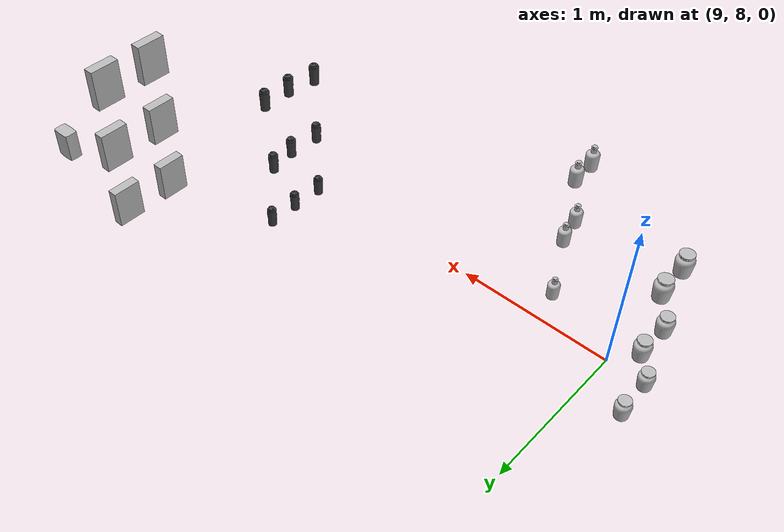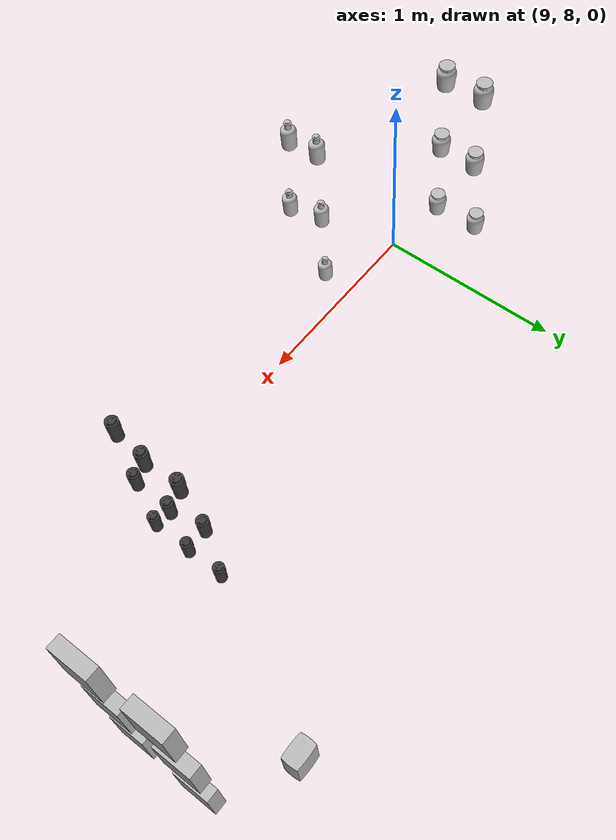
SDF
<sdf version="1.6">
 <world name="default">
  <model name="deodorant">
   <link name="link_0">
    <inertial>
     <mass>1</mass>
     <inertia>
      <ixx>0.166667</ixx>
      <ixy>0</ixy>
      <ixz>0</ixz>
      <iyy>0.166667</iyy>
      <iyz>0</iyz>
      <izz>0.166667</izz>
     </inertia>
    </inertial>
    <pose>-2e-06 3e-06 0 0 -0 0</pose>
    <visual name="visual">
     <geometry>
      <mesh><uri>model://deodorant/meshes/deodorant.dae</uri><scale>0.03 0.03 0.03</scale></mesh>
     </geometry>
    </visual>
    <collision name="collision">
     <geometry>
      <mesh><uri>model://deodorant/meshes/deodorant.dae</uri><scale>0.03 0.03 0.03</scale></mesh>
     </geometry>
     <surface>
      <friction>
       <ode><mu>1</mu><mu2>1</mu2><fdir1>0 0 0</fdir1><slip1>0</slip1><slip2>0</slip2></ode>
       <torsional>
        <coefficient>1</coefficient>
        <patch_radius>0</patch_radius>
        <surface_radius>0</surface_radius>
        <use_patch_radius>1</use_patch_radius>
        <ode><slip>0</slip></ode>
       </torsional>
      </friction>
      <bounce><restitution_coefficient>0</restitution_coefficient><threshold>1e+06</threshold></bounce>
      <contact>
       <collide_without_contact>0</collide_without_contact>
       <collide_without_contact_bitmask>1</collide_without_contact_bitmask>
       <collide_bitmask>1</collide_bitmask>
       <ode>
        <soft_cfm>0</soft_cfm>
        <soft_erp>0.2</soft_erp>
        <kp>1e+13</kp>
        <kd>1</kd>
        <max_vel>0.01</max_vel>
        <min_depth>0</min_depth>
       </ode>
       <bullet>
        <split_impulse>1</split_impulse>
        <split_impulse_penetration_threshold>-0.01</split_impulse_penetration_threshold>
        <soft_cfm>0</soft_cfm>
        <soft_erp>0.2</soft_erp>
        <kp>1e+13</kp>
        <kd>1</kd>
       </bullet>
      </contact>
     </surface>
    </collision>
   </link>
   <static>1</static>
   <pose>11.0774 8.17403 0.959351 0 -0 0</pose>
  </model>
  <model name="deodorant_clone">
   <link name="link_0">
    <inertial>
     <mass>1</mass>
     <inertia>
      <ixx>0.166667</ixx>
      <ixy>0</ixy>
      <ixz>0</ixz>
      <iyy>0.166667</iyy>
      <iyz>0</iyz>
      <izz>0.166667</izz>
     </inertia>
    </inertial>
    <pose>-2e-06 3e-06 0 0 -0 0</pose>
    <visual name="visual">
     <geometry>
      <mesh><uri>model://deodorant/meshes/deodorant.dae</uri><scale>0.03 0.03 0.03</scale></mesh>
     </geometry>
    </visual>
    <collision name="collision">
     <geometry>
      <mesh><uri>model://deodorant/meshes/deodorant.dae</uri><scale>0.03 0.03 0.03</scale></mesh>
     </geometry>
     <surface>
      <friction>
       <ode><mu>1</mu><mu2>1</mu2><fdir1>0 0 0</fdir1><slip1>0</slip1><slip2>0</slip2></ode>
       <torsional>
        <coefficient>1</coefficient>
        <patch_radius>0</patch_radius>
        <surface_radius>0</surface_radius>
        <use_patch_radius>1</use_patch_radius>
        <ode><slip>0</slip></ode>
       </torsional>
      </friction>
      <bounce><restitution_coefficient>0</restitution_coefficient><threshold>1e+06</threshold></bounce>
      <contact>
       <collide_without_contact>0</collide_without_contact>
       <collide_without_contact_bitmask>1</collide_without_contact_bitmask>
       <collide_bitmask>1</collide_bitmask>
       <ode>
        <soft_cfm>0</soft_cfm>
        <soft_erp>0.2</soft_erp>
        <kp>1e+13</kp>
        <kd>1</kd>
        <max_vel>0.01</max_vel>
        <min_depth>0</min_depth>
       </ode>
       <bullet>
        <split_impulse>1</split_impulse>
        <split_impulse_penetration_threshold>-0.01</split_impulse_penetration_threshold>
        <soft_cfm>0</soft_cfm>
        <soft_erp>0.2</soft_erp>
        <kp>1e+13</kp>
        <kd>1</kd>
       </bullet>
      </contact>
     </surface>
    </collision>
   </link>
   <static>1</static>
   <pose>11.0838 8.37858 0.104595 0 -0 0</pose>
  </model>
  <model name="deodorant_clone_0">
   <link name="link_0">
    <inertial>
     <mass>1</mass>
     <inertia>
      <ixx>0.166667</ixx>
      <ixy>0</ixy>
      <ixz>0</ixz>
      <iyy>0.166667</iyy>
      <iyz>0</iyz>
      <izz>0.166667</izz>
     </inertia>
    </inertial>
    <pose>-2e-06 3e-06 0 0 -0 0</pose>
    <visual name="visual">
     <geometry>
      <mesh><uri>model://deodorant/meshes/deodorant.dae</uri><scale>0.03 0.03 0.03</scale></mesh>
     </geometry>
    </visual>
    <collision name="collision">
     <geometry>
      <mesh><uri>model://deodorant/meshes/deodorant.dae</uri><scale>0.03 0.03 0.03</scale></mesh>
     </geometry>
     <surface>
      <friction>
       <ode><mu>1</mu><mu2>1</mu2><fdir1>0 0 0</fdir1><slip1>0</slip1><slip2>0</slip2></ode>
       <torsional>
        <coefficient>1</coefficient>
        <patch_radius>0</patch_radius>
        <surface_radius>0</surface_radius>
        <use_patch_radius>1</use_patch_radius>
        <ode><slip>0</slip></ode>
       </torsional>
      </friction>
      <bounce><restitution_coefficient>0</restitution_coefficient><threshold>1e+06</threshold></bounce>
      <contact>
       <collide_without_contact>0</collide_without_contact>
       <collide_without_contact_bitmask>1</collide_without_contact_bitmask>
       <collide_bitmask>1</collide_bitmask>
       <ode>
        <soft_cfm>0</soft_cfm>
        <soft_erp>0.2</soft_erp>
        <kp>1e+13</kp>
        <kd>1</kd>
        <max_vel>0.01</max_vel>
        <min_depth>0</min_depth>
       </ode>
       <bullet>
        <split_impulse>1</split_impulse>
        <split_impulse_penetration_threshold>-0.01</split_impulse_penetration_threshold>
        <soft_cfm>0</soft_cfm>
        <soft_erp>0.2</soft_erp>
        <kp>1e+13</kp>
        <kd>1</kd>
       </bullet>
      </contact>
     </surface>
    </collision>
   </link>
   <static>1</static>
   <pose>11.0877 8.57294 0.104595 0 -0 0</pose>
  </model>
  <model name="deodorant_clone_1">
   <link name="link_0">
    <inertial>
     <mass>1</mass>
     <inertia>
      <ixx>0.166667</ixx>
      <ixy>0</ixy>
      <ixz>0</ixz>
      <iyy>0.166667</iyy>
      <iyz>0</iyz>
      <izz>0.166667</izz>
     </inertia>
    </inertial>
    <pose>-2e-06 3e-06 0 0 -0 0</pose>
    <visual name="visual">
     <geometry>
      <mesh><uri>model://deodorant/meshes/deodorant.dae</uri><scale>0.03 0.03 0.03</scale></mesh>
     </geometry>
    </visual>
    <collision name="collision">
     <geometry>
      <mesh><uri>model://deodorant/meshes/deodorant.dae</uri><scale>0.03 0.03 0.03</scale></mesh>
     </geometry>
     <surface>
      <friction>
       <ode><mu>1</mu><mu2>1</mu2><fdir1>0 0 0</fdir1><slip1>0</slip1><slip2>0</slip2></ode>
       <torsional>
        <coefficient>1</coefficient>
        <patch_radius>0</patch_radius>
        <surface_radius>0</surface_radius>
        <use_patch_radius>1</use_patch_radius>
        <ode><slip>0</slip></ode>
       </torsional>
      </friction>
      <bounce><restitution_coefficient>0</restitution_coefficient><threshold>1e+06</threshold></bounce>
      <contact>
       <collide_without_contact>0</collide_without_contact>
       <collide_without_contact_bitmask>1</collide_without_contact_bitmask>
       <collide_bitmask>1</collide_bitmask>
       <ode>
        <soft_cfm>0</soft_cfm>
        <soft_erp>0.2</soft_erp>
        <kp>1e+13</kp>
        <kd>1</kd>
        <max_vel>0.01</max_vel>
        <min_depth>0</min_depth>
       </ode>
       <bullet>
        <split_impulse>1</split_impulse>
        <split_impulse_penetration_threshold>-0.01</split_impulse_penetration_threshold>
        <soft_cfm>0</soft_cfm>
        <soft_erp>0.2</soft_erp>
        <kp>1e+13</kp>
        <kd>1</kd>
       </bullet>
      </contact>
     </surface>
    </collision>
   </link>
   <static>1</static>
   <pose>11.0774 8.17359 0.104595 0 -0 0</pose>
  </model>
  <model name="deodorant_clone_2">
   <link name="link_0">
    <inertial>
     <mass>1</mass>
     <inertia>
      <ixx>0.166667</ixx>
      <ixy>0</ixy>
      <ixz>0</ixz>
      <iyy>0.166667</iyy>
      <iyz>0</iyz>
      <izz>0.166667</izz>
     </inertia>
    </inertial>
    <pose>-2e-06 3e-06 0 0 -0 0</pose>
    <visual name="visual">
     <geometry>
      <mesh><uri>model://deodorant/meshes/deodorant.dae</uri><scale>0.03 0.03 0.03</scale></mesh>
     </geometry>
    </visual>
    <collision name="collision">
     <geometry>
      <mesh><uri>model://deodorant/meshes/deodorant.dae</uri><scale>0.03 0.03 0.03</scale></mesh>
     </geometry>
     <surface>
      <friction>
       <ode><mu>1</mu><mu2>1</mu2><fdir1>0 0 0</fdir1><slip1>0</slip1><slip2>0</slip2></ode>
       <torsional>
        <coefficient>1</coefficient>
        <patch_radius>0</patch_radius>
        <surface_radius>0</surface_radius>
        <use_patch_radius>1</use_patch_radius>
        <ode><slip>0</slip></ode>
       </torsional>
      </friction>
      <bounce><restitution_coefficient>0</restitution_coefficient><threshold>1e+06</threshold></bounce>
      <contact>
       <collide_without_contact>0</collide_without_contact>
       <collide_without_contact_bitmask>1</collide_without_contact_bitmask>
       <collide_bitmask>1</collide_bitmask>
       <ode>
        <soft_cfm>0</soft_cfm>
        <soft_erp>0.2</soft_erp>
        <kp>1e+13</kp>
        <kd>1</kd>
        <max_vel>0.01</max_vel>
        <min_depth>0</min_depth>
       </ode>
       <bullet>
        <split_impulse>1</split_impulse>
        <split_impulse_penetration_threshold>-0.01</split_impulse_penetration_threshold>
        <soft_cfm>0</soft_cfm>
        <soft_erp>0.2</soft_erp>
        <kp>1e+13</kp>
        <kd>1</kd>
       </bullet>
      </contact>
     </surface>
    </collision>
   </link>
   <static>1</static>
   <pose>11.094 8.37201 0.528479 0 -0 0</pose>
  </model>
  <model name="deodorant_clone_3">
   <link name="link_0">
    <inertial>
     <mass>1</mass>
     <inertia>
      <ixx>0.166667</ixx>
      <ixy>0</ixy>
      <ixz>0</ixz>
      <iyy>0.166667</iyy>
      <iyz>0</iyz>
      <izz>0.166667</izz>
     </inertia>
    </inertial>
    <pose>-2e-06 3e-06 0 0 -0 0</pose>
    <visual name="visual">
     <geometry>
      <mesh><uri>model://deodorant/meshes/deodorant.dae</uri><scale>0.03 0.03 0.03</scale></mesh>
     </geometry>
    </visual>
    <collision name="collision">
     <geometry>
      <mesh><uri>model://deodorant/meshes/deodorant.dae</uri><scale>0.03 0.03 0.03</scale></mesh>
     </geometry>
     <surface>
      <friction>
       <ode><mu>1</mu><mu2>1</mu2><fdir1>0 0 0</fdir1><slip1>0</slip1><slip2>0</slip2></ode>
       <torsional>
        <coefficient>1</coefficient>
        <patch_radius>0</patch_radius>
        <surface_radius>0</surface_radius>
        <use_patch_radius>1</use_patch_radius>
        <ode><slip>0</slip></ode>
       </torsional>
      </friction>
      <bounce><restitution_coefficient>0</restitution_coefficient><threshold>1e+06</threshold></bounce>
      <contact>
       <collide_without_contact>0</collide_without_contact>
       <collide_without_contact_bitmask>1</collide_without_contact_bitmask>
       <collide_bitmask>1</collide_bitmask>
       <ode>
        <soft_cfm>0</soft_cfm>
        <soft_erp>0.2</soft_erp>
        <kp>1e+13</kp>
        <kd>1</kd>
        <max_vel>0.01</max_vel>
        <min_depth>0</min_depth>
       </ode>
       <bullet>
        <split_impulse>1</split_impulse>
        <split_impulse_penetration_threshold>-0.01</split_impulse_penetration_threshold>
        <soft_cfm>0</soft_cfm>
        <soft_erp>0.2</soft_erp>
        <kp>1e+13</kp>
        <kd>1</kd>
       </bullet>
      </contact>
     </surface>
    </collision>
   </link>
   <static>1</static>
   <pose>11.07 8.5429 0.528479 0 -0 0</pose>
  </model>
  <model name="deodorant_clone_4">
   <link name="link_0">
    <inertial>
     <mass>1</mass>
     <inertia>
      <ixx>0.166667</ixx>
      <ixy>0</ixy>
      <ixz>0</ixz>
      <iyy>0.166667</iyy>
      <iyz>0</iyz>
      <izz>0.166667</izz>
     </inertia>
    </inertial>
    <pose>-2e-06 3e-06 0 0 -0 0</pose>
    <visual name="visual">
     <geometry>
      <mesh><uri>model://deodorant/meshes/deodorant.dae</uri><scale>0.03 0.03 0.03</scale></mesh>
     </geometry>
    </visual>
    <collision name="collision">
     <geometry>
      <mesh><uri>model://deodorant/meshes/deodorant.dae</uri><scale>0.03 0.03 0.03</scale></mesh>
     </geometry>
     <surface>
      <friction>
       <ode><mu>1</mu><mu2>1</mu2><fdir1>0 0 0</fdir1><slip1>0</slip1><slip2>0</slip2></ode>
       <torsional>
        <coefficient>1</coefficient>
        <patch_radius>0</patch_radius>
        <surface_radius>0</surface_radius>
        <use_patch_radius>1</use_patch_radius>
        <ode><slip>0</slip></ode>
       </torsional>
      </friction>
      <bounce><restitution_coefficient>0</restitution_coefficient><threshold>1e+06</threshold></bounce>
      <contact>
       <collide_without_contact>0</collide_without_contact>
       <collide_without_contact_bitmask>1</collide_without_contact_bitmask>
       <collide_bitmask>1</collide_bitmask>
       <ode>
        <soft_cfm>0</soft_cfm>
        <soft_erp>0.2</soft_erp>
        <kp>1e+13</kp>
        <kd>1</kd>
        <max_vel>0.01</max_vel>
        <min_depth>0</min_depth>
       </ode>
       <bullet>
        <split_impulse>1</split_impulse>
        <split_impulse_penetration_threshold>-0.01</split_impulse_penetration_threshold>
        <soft_cfm>0</soft_cfm>
        <soft_erp>0.2</soft_erp>
        <kp>1e+13</kp>
        <kd>1</kd>
       </bullet>
      </contact>
     </surface>
    </collision>
   </link>
   <static>1</static>
   <pose>11.0806 8.17041 0.528479 0 -0 0</pose>
  </model>
  <model name="deodorant_clone_5">
   <link name="link_0">
    <inertial>
     <mass>1</mass>
     <inertia>
      <ixx>0.166667</ixx>
      <ixy>0</ixy>
      <ixz>0</ixz>
      <iyy>0.166667</iyy>
      <iyz>0</iyz>
      <izz>0.166667</izz>
     </inertia>
    </inertial>
    <pose>-2e-06 3e-06 0 0 -0 0</pose>
    <visual name="visual">
     <geometry>
      <mesh><uri>model://deodorant/meshes/deodorant.dae</uri><scale>0.03 0.03 0.03</scale></mesh>
     </geometry>
    </visual>
    <collision name="collision">
     <geometry>
      <mesh><uri>model://deodorant/meshes/deodorant.dae</uri><scale>0.03 0.03 0.03</scale></mesh>
     </geometry>
     <surface>
      <friction>
       <ode><mu>1</mu><mu2>1</mu2><fdir1>0 0 0</fdir1><slip1>0</slip1><slip2>0</slip2></ode>
       <torsional>
        <coefficient>1</coefficient>
        <patch_radius>0</patch_radius>
        <surface_radius>0</surface_radius>
        <use_patch_radius>1</use_patch_radius>
        <ode><slip>0</slip></ode>
       </torsional>
      </friction>
      <bounce><restitution_coefficient>0</restitution_coefficient><threshold>1e+06</threshold></bounce>
      <contact>
       <collide_without_contact>0</collide_without_contact>
       <collide_without_contact_bitmask>1</collide_without_contact_bitmask>
       <collide_bitmask>1</collide_bitmask>
       <ode>
        <soft_cfm>0</soft_cfm>
        <soft_erp>0.2</soft_erp>
        <kp>1e+13</kp>
        <kd>1</kd>
        <max_vel>0.01</max_vel>
        <min_depth>0</min_depth>
       </ode>
       <bullet>
        <split_impulse>1</split_impulse>
        <split_impulse_penetration_threshold>-0.01</split_impulse_penetration_threshold>
        <soft_cfm>0</soft_cfm>
        <soft_erp>0.2</soft_erp>
        <kp>1e+13</kp>
        <kd>1</kd>
       </bullet>
      </contact>
     </surface>
    </collision>
   </link>
   <static>1</static>
   <pose>11.108 8.3523 0.959351 0 -0 0</pose>
  </model>
  <model name="deodorant_clone_6">
   <link name="link_0">
    <inertial>
     <mass>1</mass>
     <inertia>
      <ixx>0.166667</ixx>
      <ixy>0</ixy>
      <ixz>0</ixz>
      <iyy>0.166667</iyy>
      <iyz>0</iyz>
      <izz>0.166667</izz>
     </inertia>
    </inertial>
    <pose>-2e-06 3e-06 0 0 -0 0</pose>
    <visual name="visual">
     <geometry>
      <mesh><uri>model://deodorant/meshes/deodorant.dae</uri><scale>0.03 0.03 0.03</scale></mesh>
     </geometry>
    </visual>
    <collision name="collision">
     <geometry>
      <mesh><uri>model://deodorant/meshes/deodorant.dae</uri><scale>0.03 0.03 0.03</scale></mesh>
     </geometry>
     <surface>
      <friction>
       <ode><mu>1</mu><mu2>1</mu2><fdir1>0 0 0</fdir1><slip1>0</slip1><slip2>0</slip2></ode>
       <torsional>
        <coefficient>1</coefficient>
        <patch_radius>0</patch_radius>
        <surface_radius>0</surface_radius>
        <use_patch_radius>1</use_patch_radius>
        <ode><slip>0</slip></ode>
       </torsional>
      </friction>
      <bounce><restitution_coefficient>0</restitution_coefficient><threshold>1e+06</threshold></bounce>
      <contact>
       <collide_without_contact>0</collide_without_contact>
       <collide_without_contact_bitmask>1</collide_without_contact_bitmask>
       <collide_bitmask>1</collide_bitmask>
       <ode>
        <soft_cfm>0</soft_cfm>
        <soft_erp>0.2</soft_erp>
        <kp>1e+13</kp>
        <kd>1</kd>
        <max_vel>0.01</max_vel>
        <min_depth>0</min_depth>
       </ode>
       <bullet>
        <split_impulse>1</split_impulse>
        <split_impulse_penetration_threshold>-0.01</split_impulse_penetration_threshold>
        <soft_cfm>0</soft_cfm>
        <soft_erp>0.2</soft_erp>
        <kp>1e+13</kp>
        <kd>1</kd>
       </bullet>
      </contact>
     </surface>
    </collision>
   </link>
   <static>1</static>
   <pose>11.111 8.5358 0.959351 0 -0 0</pose>
  </model>
  <model name="mustard">
   <link name="link_3">
    <inertial>
     <mass>1</mass>
     <inertia>
      <ixx>0.166667</ixx>
      <ixy>0</ixy>
      <ixz>0</ixz>
      <iyy>0.166667</iyy>
      <iyz>0</iyz>
      <izz>0.166667</izz>
     </inertia>
    </inertial>
    <pose>-1e-06 -1e-06 0 0 -0 0</pose>
    <visual name="visual">
     <geometry><mesh><uri>model://mustard/meshes/mustard.dae</uri><scale>1 1 1</scale></mesh></geometry>
    </visual>
    <collision name="collision">
     <geometry><mesh><uri>model://mustard/meshes/mustard.dae</uri><scale>1 1 1</scale></mesh></geometry>
     <surface>
      <friction>
       <ode><mu>1</mu><mu2>1</mu2><fdir1>0 0 0</fdir1><slip1>0</slip1><slip2>0</slip2></ode>
       <torsional>
        <coefficient>1</coefficient>
        <patch_radius>0</patch_radius>
        <surface_radius>0</surface_radius>
        <use_patch_radius>1</use_patch_radius>
        <ode><slip>0</slip></ode>
       </torsional>
      </friction>
      <bounce><restitution_coefficient>0</restitution_coefficient><threshold>1e+06</threshold></bounce>
      <contact>
       <collide_without_contact>0</collide_without_contact>
       <collide_without_contact_bitmask>1</collide_without_contact_bitmask>
       <collide_bitmask>1</collide_bitmask>
       <ode>
        <soft_cfm>0</soft_cfm>
        <soft_erp>0.2</soft_erp>
        <kp>1e+13</kp>
        <kd>1</kd>
        <max_vel>0.01</max_vel>
        <min_depth>0</min_depth>
       </ode>
       <bullet>
        <split_impulse>1</split_impulse>
        <split_impulse_penetration_threshold>-0.01</split_impulse_penetration_threshold>
        <soft_cfm>0</soft_cfm>
        <soft_erp>0.2</soft_erp>
        <kp>1e+13</kp>
        <kd>1</kd>
       </bullet>
      </contact>
     </surface>
    </collision>
   </link>
   <static>1</static>
   <pose>8.72586 8.09646 0.983474 0 0 -1.56881</pose>
  </model>
  <model name="mustard_clone">
   <link name="link_3">
    <inertial>
     <mass>1</mass>
     <inertia>
      <ixx>0.166667</ixx>
      <ixy>0</ixy>
      <ixz>0</ixz>
      <iyy>0.166667</iyy>
      <iyz>0</iyz>
      <izz>0.166667</izz>
     </inertia>
    </inertial>
    <pose>-1e-06 -1e-06 0 0 -0 0</pose>
    <visual name="visual">
     <geometry><mesh><uri>model://mustard/meshes/mustard.dae</uri><scale>1 1 1</scale></mesh></geometry>
    </visual>
    <collision name="collision">
     <geometry><mesh><uri>model://mustard/meshes/mustard.dae</uri><scale>1 1 1</scale></mesh></geometry>
     <surface>
      <friction>
       <ode><mu>1</mu><mu2>1</mu2><fdir1>0 0 0</fdir1><slip1>0</slip1><slip2>0</slip2></ode>
       <torsional>
        <coefficient>1</coefficient>
        <patch_radius>0</patch_radius>
        <surface_radius>0</surface_radius>
        <use_patch_radius>1</use_patch_radius>
        <ode><slip>0</slip></ode>
       </torsional>
      </friction>
      <bounce><restitution_coefficient>0</restitution_coefficient><threshold>1e+06</threshold></bounce>
      <contact>
       <collide_without_contact>0</collide_without_contact>
       <collide_without_contact_bitmask>1</collide_without_contact_bitmask>
       <collide_bitmask>1</collide_bitmask>
       <ode>
        <soft_cfm>0</soft_cfm>
        <soft_erp>0.2</soft_erp>
        <kp>1e+13</kp>
        <kd>1</kd>
        <max_vel>0.01</max_vel>
        <min_depth>0</min_depth>
       </ode>
       <bullet>
        <split_impulse>1</split_impulse>
        <split_impulse_penetration_threshold>-0.01</split_impulse_penetration_threshold>
        <soft_cfm>0</soft_cfm>
        <soft_erp>0.2</soft_erp>
        <kp>1e+13</kp>
        <kd>1</kd>
       </bullet>
      </contact>
     </surface>
    </collision>
   </link>
   <static>1</static>
   <pose>8.71562 8.34337 0.100075 0 0 -1.56881</pose>
  </model>
  <model name="mustard_clone_0">
   <link name="link_3">
    <inertial>
     <mass>1</mass>
     <inertia>
      <ixx>0.166667</ixx>
      <ixy>0</ixy>
      <ixz>0</ixz>
      <iyy>0.166667</iyy>
      <iyz>0</iyz>
      <izz>0.166667</izz>
     </inertia>
    </inertial>
    <pose>-1e-06 -1e-06 0 0 -0 0</pose>
    <visual name="visual">
     <geometry><mesh><uri>model://mustard/meshes/mustard.dae</uri><scale>1 1 1</scale></mesh></geometry>
    </visual>
    <collision name="collision">
     <geometry><mesh><uri>model://mustard/meshes/mustard.dae</uri><scale>1 1 1</scale></mesh></geometry>
     <surface>
      <friction>
       <ode><mu>1</mu><mu2>1</mu2><fdir1>0 0 0</fdir1><slip1>0</slip1><slip2>0</slip2></ode>
       <torsional>
        <coefficient>1</coefficient>
        <patch_radius>0</patch_radius>
        <surface_radius>0</surface_radius>
        <use_patch_radius>1</use_patch_radius>
        <ode><slip>0</slip></ode>
       </torsional>
      </friction>
      <bounce><restitution_coefficient>0</restitution_coefficient><threshold>1e+06</threshold></bounce>
      <contact>
       <collide_without_contact>0</collide_without_contact>
       <collide_without_contact_bitmask>1</collide_without_contact_bitmask>
       <collide_bitmask>1</collide_bitmask>
       <ode>
        <soft_cfm>0</soft_cfm>
        <soft_erp>0.2</soft_erp>
        <kp>1e+13</kp>
        <kd>1</kd>
        <max_vel>0.01</max_vel>
        <min_depth>0</min_depth>
       </ode>
       <bullet>
        <split_impulse>1</split_impulse>
        <split_impulse_penetration_threshold>-0.01</split_impulse_penetration_threshold>
        <soft_cfm>0</soft_cfm>
        <soft_erp>0.2</soft_erp>
        <kp>1e+13</kp>
        <kd>1</kd>
       </bullet>
      </contact>
     </surface>
    </collision>
   </link>
   <static>1</static>
   <pose>8.72386 8.09896 0.100075 0 0 -1.56881</pose>
  </model>
  <model name="mustard_clone_2">
   <link name="link_3">
    <inertial>
     <mass>1</mass>
     <inertia>
      <ixx>0.166667</ixx>
      <ixy>0</ixy>
      <ixz>0</ixz>
      <iyy>0.166667</iyy>
      <iyz>0</iyz>
      <izz>0.166667</izz>
     </inertia>
    </inertial>
    <pose>-1e-06 -1e-06 0 0 -0 0</pose>
    <visual name="visual">
     <geometry><mesh><uri>model://mustard/meshes/mustard.dae</uri><scale>1 1 1</scale></mesh></geometry>
    </visual>
    <collision name="collision">
     <geometry><mesh><uri>model://mustard/meshes/mustard.dae</uri><scale>1 1 1</scale></mesh></geometry>
     <surface>
      <friction>
       <ode><mu>1</mu><mu2>1</mu2><fdir1>0 0 0</fdir1><slip1>0</slip1><slip2>0</slip2></ode>
       <torsional>
        <coefficient>1</coefficient>
        <patch_radius>0</patch_radius>
        <surface_radius>0</surface_radius>
        <use_patch_radius>1</use_patch_radius>
        <ode><slip>0</slip></ode>
       </torsional>
      </friction>
      <bounce><restitution_coefficient>0</restitution_coefficient><threshold>1e+06</threshold></bounce>
      <contact>
       <collide_without_contact>0</collide_without_contact>
       <collide_without_contact_bitmask>1</collide_without_contact_bitmask>
       <collide_bitmask>1</collide_bitmask>
       <ode>
        <soft_cfm>0</soft_cfm>
        <soft_erp>0.2</soft_erp>
        <kp>1e+13</kp>
        <kd>1</kd>
        <max_vel>0.01</max_vel>
        <min_depth>0</min_depth>
       </ode>
       <bullet>
        <split_impulse>1</split_impulse>
        <split_impulse_penetration_threshold>-0.01</split_impulse_penetration_threshold>
        <soft_cfm>0</soft_cfm>
        <soft_erp>0.2</soft_erp>
        <kp>1e+13</kp>
        <kd>1</kd>
       </bullet>
      </contact>
     </surface>
    </collision>
   </link>
   <static>1</static>
   <pose>8.72541 8.30292 0.541519 0 0 -1.56881</pose>
  </model>
  <model name="mustard_clone_3">
   <link name="link_3">
    <inertial>
     <mass>1</mass>
     <inertia>
      <ixx>0.166667</ixx>
      <ixy>0</ixy>
      <ixz>0</ixz>
      <iyy>0.166667</iyy>
      <iyz>0</iyz>
      <izz>0.166667</izz>
     </inertia>
    </inertial>
    <pose>-1e-06 -1e-06 0 0 -0 0</pose>
    <visual name="visual">
     <geometry><mesh><uri>model://mustard/meshes/mustard.dae</uri><scale>1 1 1</scale></mesh></geometry>
    </visual>
    <collision name="collision">
     <geometry><mesh><uri>model://mustard/meshes/mustard.dae</uri><scale>1 1 1</scale></mesh></geometry>
     <surface>
      <friction>
       <ode><mu>1</mu><mu2>1</mu2><fdir1>0 0 0</fdir1><slip1>0</slip1><slip2>0</slip2></ode>
       <torsional>
        <coefficient>1</coefficient>
        <patch_radius>0</patch_radius>
        <surface_radius>0</surface_radius>
        <use_patch_radius>1</use_patch_radius>
        <ode><slip>0</slip></ode>
       </torsional>
      </friction>
      <bounce><restitution_coefficient>0</restitution_coefficient><threshold>1e+06</threshold></bounce>
      <contact>
       <collide_without_contact>0</collide_without_contact>
       <collide_without_contact_bitmask>1</collide_without_contact_bitmask>
       <collide_bitmask>1</collide_bitmask>
       <ode>
        <soft_cfm>0</soft_cfm>
        <soft_erp>0.2</soft_erp>
        <kp>1e+13</kp>
        <kd>1</kd>
        <max_vel>0.01</max_vel>
        <min_depth>0</min_depth>
       </ode>
       <bullet>
        <split_impulse>1</split_impulse>
        <split_impulse_penetration_threshold>-0.01</split_impulse_penetration_threshold>
        <soft_cfm>0</soft_cfm>
        <soft_erp>0.2</soft_erp>
        <kp>1e+13</kp>
        <kd>1</kd>
       </bullet>
      </contact>
     </surface>
    </collision>
   </link>
   <static>1</static>
   <pose>8.72188 8.09316 0.541519 0 0 -1.56881</pose>
  </model>
  <model name="mustard_clone_4">
   <link name="link_3">
    <inertial>
     <mass>1</mass>
     <inertia>
      <ixx>0.166667</ixx>
      <ixy>0</ixy>
      <ixz>0</ixz>
      <iyy>0.166667</iyy>
      <iyz>0</iyz>
      <izz>0.166667</izz>
     </inertia>
    </inertial>
    <pose>-1e-06 -1e-06 0 0 -0 0</pose>
    <visual name="visual">
     <geometry><mesh><uri>model://mustard/meshes/mustard.dae</uri><scale>1 1 1</scale></mesh></geometry>
    </visual>
    <collision name="collision">
     <geometry><mesh><uri>model://mustard/meshes/mustard.dae</uri><scale>1 1 1</scale></mesh></geometry>
     <surface>
      <friction>
       <ode><mu>1</mu><mu2>1</mu2><fdir1>0 0 0</fdir1><slip1>0</slip1><slip2>0</slip2></ode>
       <torsional>
        <coefficient>1</coefficient>
        <patch_radius>0</patch_radius>
        <surface_radius>0</surface_radius>
        <use_patch_radius>1</use_patch_radius>
        <ode><slip>0</slip></ode>
       </torsional>
      </friction>
      <bounce><restitution_coefficient>0</restitution_coefficient><threshold>1e+06</threshold></bounce>
      <contact>
       <collide_without_contact>0</collide_without_contact>
       <collide_without_contact_bitmask>1</collide_without_contact_bitmask>
       <collide_bitmask>1</collide_bitmask>
       <ode>
        <soft_cfm>0</soft_cfm>
        <soft_erp>0.2</soft_erp>
        <kp>1e+13</kp>
        <kd>1</kd>
        <max_vel>0.01</max_vel>
        <min_depth>0</min_depth>
       </ode>
       <bullet>
        <split_impulse>1</split_impulse>
        <split_impulse_penetration_threshold>-0.01</split_impulse_penetration_threshold>
        <soft_cfm>0</soft_cfm>
        <soft_erp>0.2</soft_erp>
        <kp>1e+13</kp>
        <kd>1</kd>
       </bullet>
      </contact>
     </surface>
    </collision>
   </link>
   <static>1</static>
   <pose>8.71837 8.30407 0.983474 0 0 -1.56881</pose>
  </model>
  <model name="detergent">
   <link name="link_0">
    <inertial>
     <mass>1</mass>
     <inertia>
      <ixx>0.166667</ixx>
      <ixy>0</ixy>
      <ixz>0</ixz>
      <iyy>0.166667</iyy>
      <iyz>0</iyz>
      <izz>0.166667</izz>
     </inertia>
    </inertial>
    <visual name="visual">
     <geometry><mesh><uri>model://detergent/meshes/detergent.dae</uri><scale>1 1 1</scale></mesh></geometry>
    </visual>
    <collision name="collision">
     <geometry><mesh><uri>model://detergent/meshes/detergent.dae</uri><scale>1 1 1</scale></mesh></geometry>
     <surface>
      <friction>
       <ode><mu>1</mu><mu2>1</mu2><fdir1>0 0 0</fdir1><slip1>0</slip1><slip2>0</slip2></ode>
       <torsional>
        <coefficient>1</coefficient>
        <patch_radius>0</patch_radius>
        <surface_radius>0</surface_radius>
        <use_patch_radius>1</use_patch_radius>
        <ode><slip>0</slip></ode>
       </torsional>
      </friction>
      <bounce><restitution_coefficient>0</restitution_coefficient><threshold>1e+06</threshold></bounce>
      <contact>
       <collide_without_contact>0</collide_without_contact>
       <collide_without_contact_bitmask>1</collide_without_contact_bitmask>
       <collide_bitmask>1</collide_bitmask>
       <ode>
        <soft_cfm>0</soft_cfm>
        <soft_erp>0.2</soft_erp>
        <kp>1e+13</kp>
        <kd>1</kd>
        <max_vel>0.01</max_vel>
        <min_depth>0</min_depth>
       </ode>
       <bullet>
        <split_impulse>1</split_impulse>
        <split_impulse_penetration_threshold>-0.01</split_impulse_penetration_threshold>
        <soft_cfm>0</soft_cfm>
        <soft_erp>0.2</soft_erp>
        <kp>1e+13</kp>
        <kd>1</kd>
       </bullet>
      </contact>
     </surface>
    </collision>
   </link>
   <static>1</static>
   <pose>11.855 9.02569 0.542381 0 -0 1.56354</pose>
  </model>
  <model name="detergent_clone">
   <link name="link_0">
    <inertial>
     <mass>1</mass>
     <inertia>
      <ixx>0.166667</ixx>
      <ixy>0</ixy>
      <ixz>0</ixz>
      <iyy>0.166667</iyy>
      <iyz>0</iyz>
      <izz>0.166667</izz>
     </inertia>
    </inertial>
    <visual name="visual">
     <geometry><mesh><uri>model://detergent/meshes/detergent.dae</uri><scale>1 1 1</scale></mesh></geometry>
    </visual>
    <collision name="collision">
     <geometry><mesh><uri>model://detergent/meshes/detergent.dae</uri><scale>1 1 1</scale></mesh></geometry>
     <surface>
      <friction>
       <ode><mu>1</mu><mu2>1</mu2><fdir1>0 0 0</fdir1><slip1>0</slip1><slip2>0</slip2></ode>
       <torsional>
        <coefficient>1</coefficient>
        <patch_radius>0</patch_radius>
        <surface_radius>0</surface_radius>
        <use_patch_radius>1</use_patch_radius>
        <ode><slip>0</slip></ode>
       </torsional>
      </friction>
      <bounce><restitution_coefficient>0</restitution_coefficient><threshold>1e+06</threshold></bounce>
      <contact>
       <collide_without_contact>0</collide_without_contact>
       <collide_without_contact_bitmask>1</collide_without_contact_bitmask>
       <collide_bitmask>1</collide_bitmask>
       <ode>
        <soft_cfm>0</soft_cfm>
        <soft_erp>0.2</soft_erp>
        <kp>1e+13</kp>
        <kd>1</kd>
        <max_vel>0.01</max_vel>
        <min_depth>0</min_depth>
       </ode>
       <bullet>
        <split_impulse>1</split_impulse>
        <split_impulse_penetration_threshold>-0.01</split_impulse_penetration_threshold>
        <soft_cfm>0</soft_cfm>
        <soft_erp>0.2</soft_erp>
        <kp>1e+13</kp>
        <kd>1</kd>
       </bullet>
      </contact>
     </surface>
    </collision>
   </link>
   <static>1</static>
   <pose>11.8448 8.67821 0.095655 0 -0 1.56354</pose>
  </model>
  <model name="detergent_clone_0">
   <link name="link_0">
    <inertial>
     <mass>1</mass>
     <inertia>
      <ixx>0.166667</ixx>
      <ixy>0</ixy>
      <ixz>0</ixz>
      <iyy>0.166667</iyy>
      <iyz>0</iyz>
      <izz>0.166667</izz>
     </inertia>
    </inertial>
    <visual name="visual">
     <geometry><mesh><uri>model://detergent/meshes/detergent.dae</uri><scale>1 1 1</scale></mesh></geometry>
    </visual>
    <collision name="collision">
     <geometry><mesh><uri>model://detergent/meshes/detergent.dae</uri><scale>1 1 1</scale></mesh></geometry>
     <surface>
      <friction>
       <ode><mu>1</mu><mu2>1</mu2><fdir1>0 0 0</fdir1><slip1>0</slip1><slip2>0</slip2></ode>
       <torsional>
        <coefficient>1</coefficient>
        <patch_radius>0</patch_radius>
        <surface_radius>0</surface_radius>
        <use_patch_radius>1</use_patch_radius>
        <ode><slip>0</slip></ode>
       </torsional>
      </friction>
      <bounce><restitution_coefficient>0</restitution_coefficient><threshold>1e+06</threshold></bounce>
      <contact>
       <collide_without_contact>0</collide_without_contact>
       <collide_without_contact_bitmask>1</collide_without_contact_bitmask>
       <collide_bitmask>1</collide_bitmask>
       <ode>
        <soft_cfm>0</soft_cfm>
        <soft_erp>0.2</soft_erp>
        <kp>1e+13</kp>
        <kd>1</kd>
        <max_vel>0.01</max_vel>
        <min_depth>0</min_depth>
       </ode>
       <bullet>
        <split_impulse>1</split_impulse>
        <split_impulse_penetration_threshold>-0.01</split_impulse_penetration_threshold>
        <soft_cfm>0</soft_cfm>
        <soft_erp>0.2</soft_erp>
        <kp>1e+13</kp>
        <kd>1</kd>
       </bullet>
      </contact>
     </surface>
    </collision>
   </link>
   <static>1</static>
   <pose>11.8548 9.02355 0.095655 0 -0 1.56354</pose>
  </model>
  <model name="detergent_clone_1">
   <link name="link_0">
    <inertial>
     <mass>1</mass>
     <inertia>
      <ixx>0.166667</ixx>
      <ixy>0</ixy>
      <ixz>0</ixz>
      <iyy>0.166667</iyy>
      <iyz>0</iyz>
      <izz>0.166667</izz>
     </inertia>
    </inertial>
    <visual name="visual">
     <geometry><mesh><uri>model://detergent/meshes/detergent.dae</uri><scale>1 1 1</scale></mesh></geometry>
    </visual>
    <collision name="collision">
     <geometry><mesh><uri>model://detergent/meshes/detergent.dae</uri><scale>1 1 1</scale></mesh></geometry>
     <surface>
      <friction>
       <ode><mu>1</mu><mu2>1</mu2><fdir1>0 0 0</fdir1><slip1>0</slip1><slip2>0</slip2></ode>
       <torsional>
        <coefficient>1</coefficient>
        <patch_radius>0</patch_radius>
        <surface_radius>0</surface_radius>
        <use_patch_radius>1</use_patch_radius>
        <ode><slip>0</slip></ode>
       </torsional>
      </friction>
      <bounce><restitution_coefficient>0</restitution_coefficient><threshold>1e+06</threshold></bounce>
      <contact>
       <collide_without_contact>0</collide_without_contact>
       <collide_without_contact_bitmask>1</collide_without_contact_bitmask>
       <collide_bitmask>1</collide_bitmask>
       <ode>
        <soft_cfm>0</soft_cfm>
        <soft_erp>0.2</soft_erp>
        <kp>1e+13</kp>
        <kd>1</kd>
        <max_vel>0.01</max_vel>
        <min_depth>0</min_depth>
       </ode>
       <bullet>
        <split_impulse>1</split_impulse>
        <split_impulse_penetration_threshold>-0.01</split_impulse_penetration_threshold>
        <soft_cfm>0</soft_cfm>
        <soft_erp>0.2</soft_erp>
        <kp>1e+13</kp>
        <kd>1</kd>
       </bullet>
      </contact>
     </surface>
    </collision>
   </link>
   <static>1</static>
   <pose>11.8478 8.6776 0.542381 0 -0 1.56354</pose>
  </model>
  <model name="detergent_clone_2">
   <link name="link_0">
    <inertial>
     <mass>1</mass>
     <inertia>
      <ixx>0.166667</ixx>
      <ixy>0</ixy>
      <ixz>0</ixz>
      <iyy>0.166667</iyy>
      <iyz>0</iyz>
      <izz>0.166667</izz>
     </inertia>
    </inertial>
    <visual name="visual">
     <geometry><mesh><uri>model://detergent/meshes/detergent.dae</uri><scale>1 1 1</scale></mesh></geometry>
    </visual>
    <collision name="collision">
     <geometry><mesh><uri>model://detergent/meshes/detergent.dae</uri><scale>1 1 1</scale></mesh></geometry>
     <surface>
      <friction>
       <ode><mu>1</mu><mu2>1</mu2><fdir1>0 0 0</fdir1><slip1>0</slip1><slip2>0</slip2></ode>
       <torsional>
        <coefficient>1</coefficient>
        <patch_radius>0</patch_radius>
        <surface_radius>0</surface_radius>
        <use_patch_radius>1</use_patch_radius>
        <ode><slip>0</slip></ode>
       </torsional>
      </friction>
      <bounce><restitution_coefficient>0</restitution_coefficient><threshold>1e+06</threshold></bounce>
      <contact>
       <collide_without_contact>0</collide_without_contact>
       <collide_without_contact_bitmask>1</collide_without_contact_bitmask>
       <collide_bitmask>1</collide_bitmask>
       <ode>
        <soft_cfm>0</soft_cfm>
        <soft_erp>0.2</soft_erp>
        <kp>1e+13</kp>
        <kd>1</kd>
        <max_vel>0.01</max_vel>
        <min_depth>0</min_depth>
       </ode>
       <bullet>
        <split_impulse>1</split_impulse>
        <split_impulse_penetration_threshold>-0.01</split_impulse_penetration_threshold>
        <soft_cfm>0</soft_cfm>
        <soft_erp>0.2</soft_erp>
        <kp>1e+13</kp>
        <kd>1</kd>
       </bullet>
      </contact>
     </surface>
    </collision>
   </link>
   <static>1</static>
   <pose>11.8524 8.6723 0.977899 0 -0 1.56354</pose>
  </model>
  <model name="detergent_clone_2_clone">
   <link name="link_0">
    <inertial>
     <mass>1</mass>
     <inertia>
      <ixx>0.166667</ixx>
      <ixy>0</ixy>
      <ixz>0</ixz>
      <iyy>0.166667</iyy>
      <iyz>0</iyz>
      <izz>0.166667</izz>
     </inertia>
    </inertial>
    <visual name="visual">
     <geometry><mesh><uri>model://detergent/meshes/detergent.dae</uri><scale>1 1 1</scale></mesh></geometry>
    </visual>
    <collision name="collision">
     <geometry><mesh><uri>model://detergent/meshes/detergent.dae</uri><scale>1 1 1</scale></mesh></geometry>
     <surface>
      <friction>
       <ode><mu>1</mu><mu2>1</mu2><fdir1>0 0 0</fdir1><slip1>0</slip1><slip2>0</slip2></ode>
       <torsional>
        <coefficient>1</coefficient>
        <patch_radius>0</patch_radius>
        <surface_radius>0</surface_radius>
        <use_patch_radius>1</use_patch_radius>
        <ode><slip>0</slip></ode>
       </torsional>
      </friction>
      <bounce><restitution_coefficient>0</restitution_coefficient><threshold>1e+06</threshold></bounce>
      <contact>
       <collide_without_contact>0</collide_without_contact>
       <collide_without_contact_bitmask>1</collide_without_contact_bitmask>
       <collide_bitmask>1</collide_bitmask>
       <ode>
        <soft_cfm>0</soft_cfm>
        <soft_erp>0.2</soft_erp>
        <kp>1e+13</kp>
        <kd>1</kd>
        <max_vel>0.01</max_vel>
        <min_depth>0</min_depth>
       </ode>
       <bullet>
        <split_impulse>1</split_impulse>
        <split_impulse_penetration_threshold>-0.01</split_impulse_penetration_threshold>
        <soft_cfm>0</soft_cfm>
        <soft_erp>0.2</soft_erp>
        <kp>1e+13</kp>
        <kd>1</kd>
       </bullet>
      </contact>
     </surface>
    </collision>
   </link>
   <static>1</static>
   <pose>11.8517 8.99914 0.977899 0 -0 1.56354</pose>
  </model>
  <model name="black_pepper">
   <link name="link_0">
    <inertial>
     <mass>1</mass>
     <inertia>
      <ixx>0.166667</ixx>
      <ixy>0</ixy>
      <ixz>0</ixz>
      <iyy>0.166667</iyy>
      <iyz>0</iyz>
      <izz>0.166667</izz>
     </inertia>
    </inertial>
    <visual name="visual">
     <geometry><mesh><uri>model://black_pepper/meshes/black_pepper.dae</uri><scale>1 1 1</scale></mesh></geometry>
    </visual>
    <collision name="collision">
     <geometry><mesh><uri>model://black_pepper/meshes/black_pepper.dae</uri><scale>1 1 1</scale></mesh></geometry>
     <surface>
      <friction>
       <ode><mu>1</mu><mu2>1</mu2><fdir1>0 0 0</fdir1><slip1>0</slip1><slip2>0</slip2></ode>
       <torsional>
        <coefficient>1</coefficient>
        <patch_radius>0</patch_radius>
        <surface_radius>0</surface_radius>
        <use_patch_radius>1</use_patch_radius>
        <ode><slip>0</slip></ode>
       </torsional>
      </friction>
      <bounce><restitution_coefficient>0</restitution_coefficient><threshold>1e+06</threshold></bounce>
      <contact>
       <collide_without_contact>0</collide_without_contact>
       <collide_without_contact_bitmask>1</collide_without_contact_bitmask>
       <collide_bitmask>1</collide_bitmask>
       <ode>
        <soft_cfm>0</soft_cfm>
        <soft_erp>0.2</soft_erp>
        <kp>1e+13</kp>
        <kd>1</kd>
        <max_vel>0.01</max_vel>
        <min_depth>0</min_depth>
       </ode>
       <bullet>
        <split_impulse>1</split_impulse>
        <split_impulse_penetration_threshold>-0.01</split_impulse_penetration_threshold>
        <soft_cfm>0</soft_cfm>
        <soft_erp>0.2</soft_erp>
        <kp>1e+13</kp>
        <kd>1</kd>
       </bullet>
      </contact>
     </surface>
    </collision>
   </link>
   <static>1</static>
   <pose>9.46407 7.88891 0.971741 0 -0 1.36337</pose>
  </model>
  <model name="black_pepper_clone_1">
   <link name="link_0">
    <inertial>
     <mass>1</mass>
     <inertia>
      <ixx>0.166667</ixx>
      <ixy>0</ixy>
      <ixz>0</ixz>
      <iyy>0.166667</iyy>
      <iyz>0</iyz>
      <izz>0.166667</izz>
     </inertia>
    </inertial>
    <visual name="visual">
     <geometry><mesh><uri>model://black_pepper/meshes/black_pepper.dae</uri><scale>1 1 1</scale></mesh></geometry>
    </visual>
    <collision name="collision">
     <geometry><mesh><uri>model://black_pepper/meshes/black_pepper.dae</uri><scale>1 1 1</scale></mesh></geometry>
     <surface>
      <friction>
       <ode><mu>1</mu><mu2>1</mu2><fdir1>0 0 0</fdir1><slip1>0</slip1><slip2>0</slip2></ode>
       <torsional>
        <coefficient>1</coefficient>
        <patch_radius>0</patch_radius>
        <surface_radius>0</surface_radius>
        <use_patch_radius>1</use_patch_radius>
        <ode><slip>0</slip></ode>
       </torsional>
      </friction>
      <bounce><restitution_coefficient>0</restitution_coefficient><threshold>1e+06</threshold></bounce>
      <contact>
       <collide_without_contact>0</collide_without_contact>
       <collide_without_contact_bitmask>1</collide_without_contact_bitmask>
       <collide_bitmask>1</collide_bitmask>
       <ode>
        <soft_cfm>0</soft_cfm>
        <soft_erp>0.2</soft_erp>
        <kp>1e+13</kp>
        <kd>1</kd>
        <max_vel>0.01</max_vel>
        <min_depth>0</min_depth>
       </ode>
       <bullet>
        <split_impulse>1</split_impulse>
        <split_impulse_penetration_threshold>-0.01</split_impulse_penetration_threshold>
        <soft_cfm>0</soft_cfm>
        <soft_erp>0.2</soft_erp>
        <kp>1e+13</kp>
        <kd>1</kd>
       </bullet>
      </contact>
     </surface>
    </collision>
   </link>
   <static>1</static>
   <pose>9.46211 7.89033 0.103642 0 -0 1.36337</pose>
  </model>
  <model name="black_pepper_clone_2">
   <link name="link_0">
    <inertial>
     <mass>1</mass>
     <inertia>
      <ixx>0.166667</ixx>
      <ixy>0</ixy>
      <ixz>0</ixz>
      <iyy>0.166667</iyy>
      <iyz>0</iyz>
      <izz>0.166667</izz>
     </inertia>
    </inertial>
    <visual name="visual">
     <geometry><mesh><uri>model://black_pepper/meshes/black_pepper.dae</uri><scale>1 1 1</scale></mesh></geometry>
    </visual>
    <collision name="collision">
     <geometry><mesh><uri>model://black_pepper/meshes/black_pepper.dae</uri><scale>1 1 1</scale></mesh></geometry>
     <surface>
      <friction>
       <ode><mu>1</mu><mu2>1</mu2><fdir1>0 0 0</fdir1><slip1>0</slip1><slip2>0</slip2></ode>
       <torsional>
        <coefficient>1</coefficient>
        <patch_radius>0</patch_radius>
        <surface_radius>0</surface_radius>
        <use_patch_radius>1</use_patch_radius>
        <ode><slip>0</slip></ode>
       </torsional>
      </friction>
      <bounce><restitution_coefficient>0</restitution_coefficient><threshold>1e+06</threshold></bounce>
      <contact>
       <collide_without_contact>0</collide_without_contact>
       <collide_without_contact_bitmask>1</collide_without_contact_bitmask>
       <collide_bitmask>1</collide_bitmask>
       <ode>
        <soft_cfm>0</soft_cfm>
        <soft_erp>0.2</soft_erp>
        <kp>1e+13</kp>
        <kd>1</kd>
        <max_vel>0.01</max_vel>
        <min_depth>0</min_depth>
       </ode>
       <bullet>
        <split_impulse>1</split_impulse>
        <split_impulse_penetration_threshold>-0.01</split_impulse_penetration_threshold>
        <soft_cfm>0</soft_cfm>
        <soft_erp>0.2</soft_erp>
        <kp>1e+13</kp>
        <kd>1</kd>
       </bullet>
      </contact>
     </surface>
    </collision>
   </link>
   <static>1</static>
   <pose>9.49959 7.72057 0.53513 0 -0 1.36337</pose>
  </model>
  <model name="black_pepper_clone_4">
   <link name="link_0">
    <inertial>
     <mass>1</mass>
     <inertia>
      <ixx>0.166667</ixx>
      <ixy>0</ixy>
      <ixz>0</ixz>
      <iyy>0.166667</iyy>
      <iyz>0</iyz>
      <izz>0.166667</izz>
     </inertia>
    </inertial>
    <visual name="visual">
     <geometry><mesh><uri>model://black_pepper/meshes/black_pepper.dae</uri><scale>1 1 1</scale></mesh></geometry>
    </visual>
    <collision name="collision">
     <geometry><mesh><uri>model://black_pepper/meshes/black_pepper.dae</uri><scale>1 1 1</scale></mesh></geometry>
     <surface>
      <friction>
       <ode><mu>1</mu><mu2>1</mu2><fdir1>0 0 0</fdir1><slip1>0</slip1><slip2>0</slip2></ode>
       <torsional>
        <coefficient>1</coefficient>
        <patch_radius>0</patch_radius>
        <surface_radius>0</surface_radius>
        <use_patch_radius>1</use_patch_radius>
        <ode><slip>0</slip></ode>
       </torsional>
      </friction>
      <bounce><restitution_coefficient>0</restitution_coefficient><threshold>1e+06</threshold></bounce>
      <contact>
       <collide_without_contact>0</collide_without_contact>
       <collide_without_contact_bitmask>1</collide_without_contact_bitmask>
       <collide_bitmask>1</collide_bitmask>
       <ode>
        <soft_cfm>0</soft_cfm>
        <soft_erp>0.2</soft_erp>
        <kp>1e+13</kp>
        <kd>1</kd>
        <max_vel>0.01</max_vel>
        <min_depth>0</min_depth>
       </ode>
       <bullet>
        <split_impulse>1</split_impulse>
        <split_impulse_penetration_threshold>-0.01</split_impulse_penetration_threshold>
        <soft_cfm>0</soft_cfm>
        <soft_erp>0.2</soft_erp>
        <kp>1e+13</kp>
        <kd>1</kd>
       </bullet>
      </contact>
     </surface>
    </collision>
   </link>
   <static>1</static>
   <pose>9.4625 7.88974 0.53513 0 -0 1.36337</pose>
  </model>
  <model name="black_pepper_clone_5">
   <link name="link_0">
    <inertial>
     <mass>1</mass>
     <inertia>
      <ixx>0.166667</ixx>
      <ixy>0</ixy>
      <ixz>0</ixz>
      <iyy>0.166667</iyy>
      <iyz>0</iyz>
      <izz>0.166667</izz>
     </inertia>
    </inertial>
    <visual name="visual">
     <geometry><mesh><uri>model://black_pepper/meshes/black_pepper.dae</uri><scale>1 1 1</scale></mesh></geometry>
    </visual>
    <collision name="collision">
     <geometry><mesh><uri>model://black_pepper/meshes/black_pepper.dae</uri><scale>1 1 1</scale></mesh></geometry>
     <surface>
      <friction>
       <ode><mu>1</mu><mu2>1</mu2><fdir1>0 0 0</fdir1><slip1>0</slip1><slip2>0</slip2></ode>
       <torsional>
        <coefficient>1</coefficient>
        <patch_radius>0</patch_radius>
        <surface_radius>0</surface_radius>
        <use_patch_radius>1</use_patch_radius>
        <ode><slip>0</slip></ode>
       </torsional>
      </friction>
      <bounce><restitution_coefficient>0</restitution_coefficient><threshold>1e+06</threshold></bounce>
      <contact>
       <collide_without_contact>0</collide_without_contact>
       <collide_without_contact_bitmask>1</collide_without_contact_bitmask>
       <collide_bitmask>1</collide_bitmask>
       <ode>
        <soft_cfm>0</soft_cfm>
        <soft_erp>0.2</soft_erp>
        <kp>1e+13</kp>
        <kd>1</kd>
        <max_vel>0.01</max_vel>
        <min_depth>0</min_depth>
       </ode>
       <bullet>
        <split_impulse>1</split_impulse>
        <split_impulse_penetration_threshold>-0.01</split_impulse_penetration_threshold>
        <soft_cfm>0</soft_cfm>
        <soft_erp>0.2</soft_erp>
        <kp>1e+13</kp>
        <kd>1</kd>
       </bullet>
      </contact>
     </surface>
    </collision>
   </link>
   <static>1</static>
   <pose>9.47234 7.72971 0.971741 0 -0 1.36337</pose>
  </model>
  <model name="flour_clone_3">
   <link name="link_5">
    <inertial>
     <mass>1</mass>
     <inertia>
      <ixx>0.166667</ixx>
      <ixy>0</ixy>
      <ixz>0</ixz>
      <iyy>0.166667</iyy>
      <iyz>0</iyz>
      <izz>0.166667</izz>
     </inertia>
    </inertial>
    <pose>4e-06 -0 0 0 -0 0</pose>
    <visual name="visual">
     <geometry><mesh><uri>model://flour/meshes/flour.dae</uri><scale>1 1 1</scale></mesh></geometry>
    </visual>
    <collision name="collision">
     <geometry><mesh><uri>model://flour/meshes/flour.dae</uri><scale>1 1 1</scale></mesh></geometry>
     <surface>
      <friction>
       <ode><mu>1</mu><mu2>1</mu2><fdir1>0 0 0</fdir1><slip1>0</slip1><slip2>0</slip2></ode>
       <torsional>
        <coefficient>1</coefficient>
        <patch_radius>0</patch_radius>
        <surface_radius>0</surface_radius>
        <use_patch_radius>1</use_patch_radius>
        <ode><slip>0</slip></ode>
       </torsional>
      </friction>
      <bounce><restitution_coefficient>0</restitution_coefficient><threshold>1e+06</threshold></bounce>
      <contact>
       <collide_without_contact>0</collide_without_contact>
       <collide_without_contact_bitmask>1</collide_without_contact_bitmask>
       <collide_bitmask>1</collide_bitmask>
       <ode>
        <soft_cfm>0</soft_cfm>
        <soft_erp>0.2</soft_erp>
        <kp>1e+13</kp>
        <kd>1</kd>
        <max_vel>0.01</max_vel>
        <min_depth>0</min_depth>
       </ode>
       <bullet>
        <split_impulse>1</split_impulse>
        <split_impulse_penetration_threshold>-0.01</split_impulse_penetration_threshold>
        <soft_cfm>0</soft_cfm>
        <soft_erp>0.2</soft_erp>
        <kp>1e+13</kp>
        <kd>1</kd>
       </bullet>
      </contact>
     </surface>
    </collision>
   </link>
   <static>1</static>
   <pose>11.6538 9.4775 0.975556 0 -0 0</pose>
  </model>
 </world>
</sdf>
